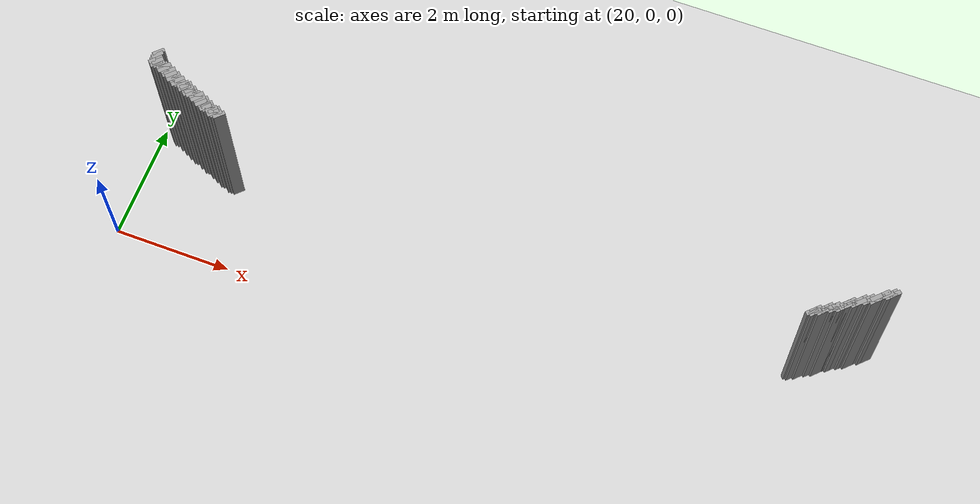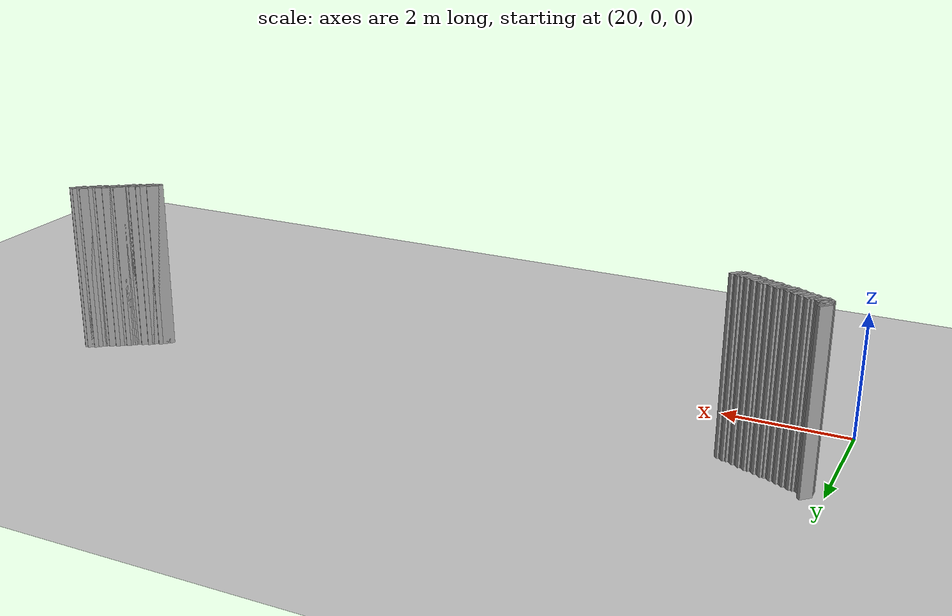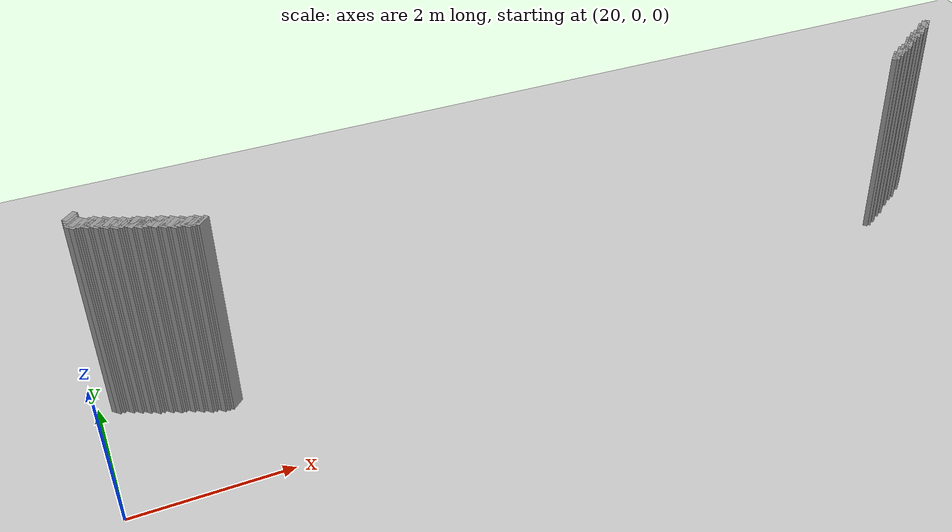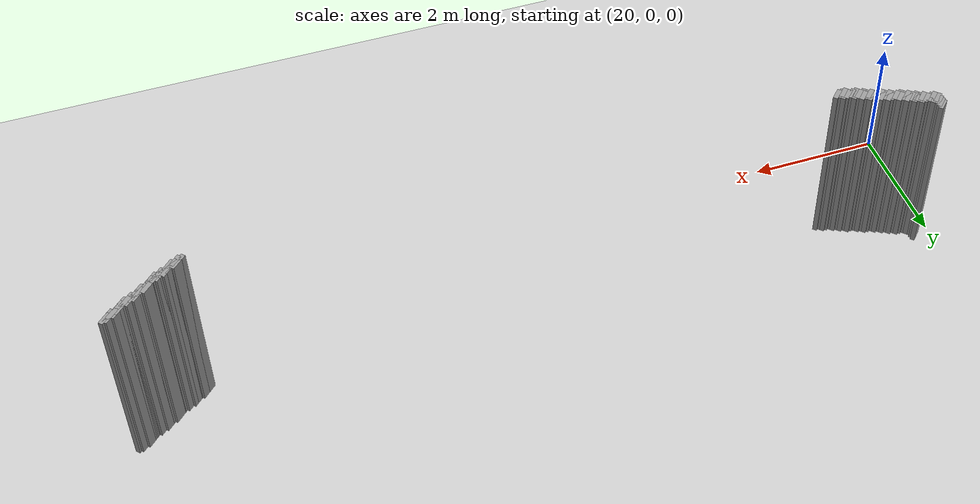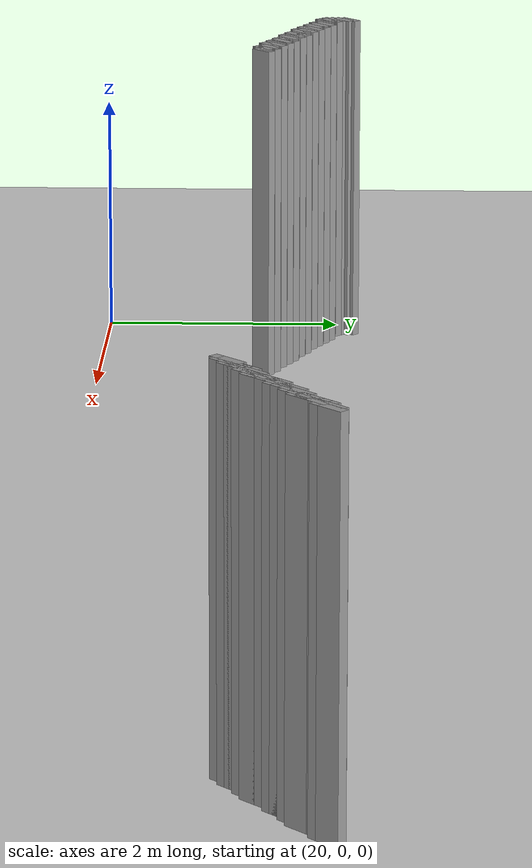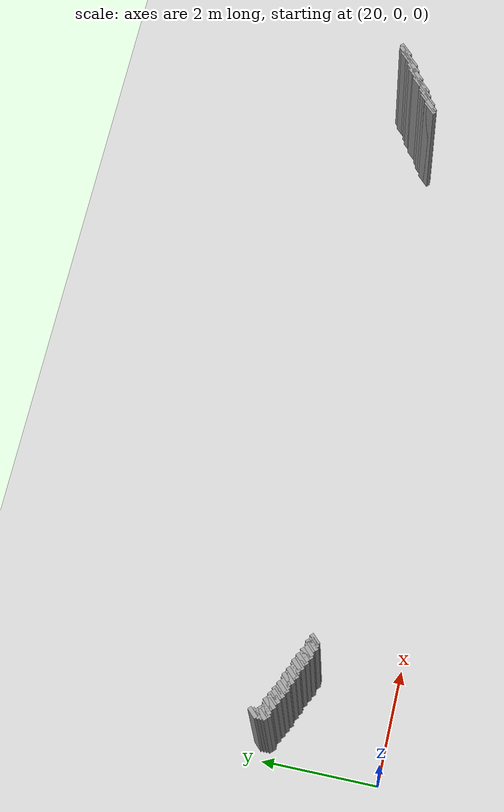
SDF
<sdf version="1.5">
 <world name="default">
  <include><uri>model://ground_plane</uri></include>
  <include><uri>model://sun</uri></include>
  <model name="grey_wall_5042">
   <static>1</static>
   <link name="link">
    <pose>32.35 2.15  1.4 0 0 -0.785398163397</pose>
    <collision name="collision"><geometry><box><size>0.0707106781187 .2  2.8</size></box></geometry></collision>
    <visual name="visual">
     <cast_shadows>0</cast_shadows>
     <geometry><box><size>0.0707106781187 .2  2.8</size></box></geometry>
     <material>
      <script>
       <uri>model://grey_wall/materials/scripts</uri>
       <uri>model://grey_wall/materials/textures</uri>
       <name>vrc/grey_wall</name>
      </script>
     </material>
    </visual>
   </link>
  </model>
  <model name="grey_wall_5043">
   <static>1</static>
   <link name="link">
    <pose>32.4 2.15  1.4 0 0 -0.785398163397</pose>
    <collision name="collision"><geometry><box><size>0.0707106781187 .2  2.8</size></box></geometry></collision>
    <visual name="visual">
     <cast_shadows>0</cast_shadows>
     <geometry><box><size>0.0707106781187 .2  2.8</size></box></geometry>
     <material>
      <script>
       <uri>model://grey_wall/materials/scripts</uri>
       <uri>model://grey_wall/materials/textures</uri>
       <name>vrc/grey_wall</name>
      </script>
     </material>
    </visual>
   </link>
  </model>
  <model name="grey_wall_5044">
   <static>1</static>
   <link name="link">
    <pose>20.25 2.1  1.4 0 0 -0.785398163397</pose>
    <collision name="collision"><geometry><box><size>0.0707106781187 .2  2.8</size></box></geometry></collision>
    <visual name="visual">
     <cast_shadows>0</cast_shadows>
     <geometry><box><size>0.0707106781187 .2  2.8</size></box></geometry>
     <material>
      <script>
       <uri>model://grey_wall/materials/scripts</uri>
       <uri>model://grey_wall/materials/textures</uri>
       <name>vrc/grey_wall</name>
      </script>
     </material>
    </visual>
   </link>
  </model>
  <model name="grey_wall_5045">
   <static>1</static>
   <link name="link">
    <pose>32.25 2.1  1.4 0 0 -0.785398163397</pose>
    <collision name="collision"><geometry><box><size>0.0707106781187 .2  2.8</size></box></geometry></collision>
    <visual name="visual">
     <cast_shadows>0</cast_shadows>
     <geometry><box><size>0.0707106781187 .2  2.8</size></box></geometry>
     <material>
      <script>
       <uri>model://grey_wall/materials/scripts</uri>
       <uri>model://grey_wall/materials/textures</uri>
       <name>vrc/grey_wall</name>
      </script>
     </material>
    </visual>
   </link>
  </model>
  <model name="grey_wall_5046">
   <static>1</static>
   <link name="link">
    <pose>32.3 2.1  1.4 0 0 -0.785398163397</pose>
    <collision name="collision"><geometry><box><size>0.0707106781187 .2  2.8</size></box></geometry></collision>
    <visual name="visual">
     <cast_shadows>0</cast_shadows>
     <geometry><box><size>0.0707106781187 .2  2.8</size></box></geometry>
     <material>
      <script>
       <uri>model://grey_wall/materials/scripts</uri>
       <uri>model://grey_wall/materials/textures</uri>
       <name>vrc/grey_wall</name>
      </script>
     </material>
    </visual>
   </link>
  </model>
  <model name="grey_wall_5047">
   <static>1</static>
   <link name="link">
    <pose>32.35 2.1  1.4 0 0 -0.785398163397</pose>
    <collision name="collision"><geometry><box><size>0.0707106781187 .2  2.8</size></box></geometry></collision>
    <visual name="visual">
     <cast_shadows>0</cast_shadows>
     <geometry><box><size>0.0707106781187 .2  2.8</size></box></geometry>
     <material>
      <script>
       <uri>model://grey_wall/materials/scripts</uri>
       <uri>model://grey_wall/materials/textures</uri>
       <name>vrc/grey_wall</name>
      </script>
     </material>
    </visual>
   </link>
  </model>
  <model name="grey_wall_5048">
   <static>1</static>
   <link name="link">
    <pose>20.25 2.05  1.4 0 0 -0.785398163397</pose>
    <collision name="collision"><geometry><box><size>0.0707106781187 .2  2.8</size></box></geometry></collision>
    <visual name="visual">
     <cast_shadows>0</cast_shadows>
     <geometry><box><size>0.0707106781187 .2  2.8</size></box></geometry>
     <material>
      <script>
       <uri>model://grey_wall/materials/scripts</uri>
       <uri>model://grey_wall/materials/textures</uri>
       <name>vrc/grey_wall</name>
      </script>
     </material>
    </visual>
   </link>
  </model>
  <model name="grey_wall_5049">
   <static>1</static>
   <link name="link">
    <pose>32.2 2.05  1.4 0 0 -0.785398163397</pose>
    <collision name="collision"><geometry><box><size>0.0707106781187 .2  2.8</size></box></geometry></collision>
    <visual name="visual">
     <cast_shadows>0</cast_shadows>
     <geometry><box><size>0.0707106781187 .2  2.8</size></box></geometry>
     <material>
      <script>
       <uri>model://grey_wall/materials/scripts</uri>
       <uri>model://grey_wall/materials/textures</uri>
       <name>vrc/grey_wall</name>
      </script>
     </material>
    </visual>
   </link>
  </model>
  <model name="grey_wall_5050">
   <static>1</static>
   <link name="link">
    <pose>32.25 2.05  1.4 0 0 -0.785398163397</pose>
    <collision name="collision"><geometry><box><size>0.0707106781187 .2  2.8</size></box></geometry></collision>
    <visual name="visual">
     <cast_shadows>0</cast_shadows>
     <geometry><box><size>0.0707106781187 .2  2.8</size></box></geometry>
     <material>
      <script>
       <uri>model://grey_wall/materials/scripts</uri>
       <uri>model://grey_wall/materials/textures</uri>
       <name>vrc/grey_wall</name>
      </script>
     </material>
    </visual>
   </link>
  </model>
  <model name="grey_wall_5051">
   <static>1</static>
   <link name="link">
    <pose>20.25 2.0  1.4 0 0 -0.785398163397</pose>
    <collision name="collision"><geometry><box><size>0.0707106781187 .2  2.8</size></box></geometry></collision>
    <visual name="visual">
     <cast_shadows>0</cast_shadows>
     <geometry><box><size>0.0707106781187 .2  2.8</size></box></geometry>
     <material>
      <script>
       <uri>model://grey_wall/materials/scripts</uri>
       <uri>model://grey_wall/materials/textures</uri>
       <name>vrc/grey_wall</name>
      </script>
     </material>
    </visual>
   </link>
  </model>
  <model name="grey_wall_5052">
   <static>1</static>
   <link name="link">
    <pose>32.15 2.0  1.4 0 0 -0.785398163397</pose>
    <collision name="collision"><geometry><box><size>0.0707106781187 .2  2.8</size></box></geometry></collision>
    <visual name="visual">
     <cast_shadows>0</cast_shadows>
     <geometry><box><size>0.0707106781187 .2  2.8</size></box></geometry>
     <material>
      <script>
       <uri>model://grey_wall/materials/scripts</uri>
       <uri>model://grey_wall/materials/textures</uri>
       <name>vrc/grey_wall</name>
      </script>
     </material>
    </visual>
   </link>
  </model>
  <model name="grey_wall_5053">
   <static>1</static>
   <link name="link">
    <pose>32.2 2.0  1.4 0 0 -0.785398163397</pose>
    <collision name="collision"><geometry><box><size>0.0707106781187 .2  2.8</size></box></geometry></collision>
    <visual name="visual">
     <cast_shadows>0</cast_shadows>
     <geometry><box><size>0.0707106781187 .2  2.8</size></box></geometry>
     <material>
      <script>
       <uri>model://grey_wall/materials/scripts</uri>
       <uri>model://grey_wall/materials/textures</uri>
       <name>vrc/grey_wall</name>
      </script>
     </material>
    </visual>
   </link>
  </model>
  <model name="grey_wall_5054">
   <static>1</static>
   <link name="link">
    <pose>20.25 1.95  1.4 0 0 -0.785398163397</pose>
    <collision name="collision"><geometry><box><size>0.0707106781187 .2  2.8</size></box></geometry></collision>
    <visual name="visual">
     <cast_shadows>0</cast_shadows>
     <geometry><box><size>0.0707106781187 .2  2.8</size></box></geometry>
     <material>
      <script>
       <uri>model://grey_wall/materials/scripts</uri>
       <uri>model://grey_wall/materials/textures</uri>
       <name>vrc/grey_wall</name>
      </script>
     </material>
    </visual>
   </link>
  </model>
  <model name="grey_wall_5055">
   <static>1</static>
   <link name="link">
    <pose>20.3 1.95  1.4 0 0 -0.785398163397</pose>
    <collision name="collision"><geometry><box><size>0.0707106781187 .2  2.8</size></box></geometry></collision>
    <visual name="visual">
     <cast_shadows>0</cast_shadows>
     <geometry><box><size>0.0707106781187 .2  2.8</size></box></geometry>
     <material>
      <script>
       <uri>model://grey_wall/materials/scripts</uri>
       <uri>model://grey_wall/materials/textures</uri>
       <name>vrc/grey_wall</name>
      </script>
     </material>
    </visual>
   </link>
  </model>
  <model name="grey_wall_5056">
   <static>1</static>
   <link name="link">
    <pose>32.05 1.95  1.4 0 0 -0.785398163397</pose>
    <collision name="collision"><geometry><box><size>0.0707106781187 .2  2.8</size></box></geometry></collision>
    <visual name="visual">
     <cast_shadows>0</cast_shadows>
     <geometry><box><size>0.0707106781187 .2  2.8</size></box></geometry>
     <material>
      <script>
       <uri>model://grey_wall/materials/scripts</uri>
       <uri>model://grey_wall/materials/textures</uri>
       <name>vrc/grey_wall</name>
      </script>
     </material>
    </visual>
   </link>
  </model>
  <model name="grey_wall_5057">
   <static>1</static>
   <link name="link">
    <pose>32.1 1.95  1.4 0 0 -0.785398163397</pose>
    <collision name="collision"><geometry><box><size>0.0707106781187 .2  2.8</size></box></geometry></collision>
    <visual name="visual">
     <cast_shadows>0</cast_shadows>
     <geometry><box><size>0.0707106781187 .2  2.8</size></box></geometry>
     <material>
      <script>
       <uri>model://grey_wall/materials/scripts</uri>
       <uri>model://grey_wall/materials/textures</uri>
       <name>vrc/grey_wall</name>
      </script>
     </material>
    </visual>
   </link>
  </model>
  <model name="grey_wall_5058">
   <static>1</static>
   <link name="link">
    <pose>32.15 1.95  1.4 0 0 -0.785398163397</pose>
    <collision name="collision"><geometry><box><size>0.0707106781187 .2  2.8</size></box></geometry></collision>
    <visual name="visual">
     <cast_shadows>0</cast_shadows>
     <geometry><box><size>0.0707106781187 .2  2.8</size></box></geometry>
     <material>
      <script>
       <uri>model://grey_wall/materials/scripts</uri>
       <uri>model://grey_wall/materials/textures</uri>
       <name>vrc/grey_wall</name>
      </script>
     </material>
    </visual>
   </link>
  </model>
  <model name="grey_wall_5059">
   <static>1</static>
   <link name="link">
    <pose>20.3 1.9  1.4 0 0 -0.785398163397</pose>
    <collision name="collision"><geometry><box><size>0.0707106781187 .2  2.8</size></box></geometry></collision>
    <visual name="visual">
     <cast_shadows>0</cast_shadows>
     <geometry><box><size>0.0707106781187 .2  2.8</size></box></geometry>
     <material>
      <script>
       <uri>model://grey_wall/materials/scripts</uri>
       <uri>model://grey_wall/materials/textures</uri>
       <name>vrc/grey_wall</name>
      </script>
     </material>
    </visual>
   </link>
  </model>
  <model name="grey_wall_5060">
   <static>1</static>
   <link name="link">
    <pose>20.35 1.9  1.4 0 0 -0.785398163397</pose>
    <collision name="collision"><geometry><box><size>0.0707106781187 .2  2.8</size></box></geometry></collision>
    <visual name="visual">
     <cast_shadows>0</cast_shadows>
     <geometry><box><size>0.0707106781187 .2  2.8</size></box></geometry>
     <material>
      <script>
       <uri>model://grey_wall/materials/scripts</uri>
       <uri>model://grey_wall/materials/textures</uri>
       <name>vrc/grey_wall</name>
      </script>
     </material>
    </visual>
   </link>
  </model>
  <model name="grey_wall_5061">
   <static>1</static>
   <link name="link">
    <pose>20.4 1.9  1.4 0 0 -0.785398163397</pose>
    <collision name="collision"><geometry><box><size>0.0707106781187 .2  2.8</size></box></geometry></collision>
    <visual name="visual">
     <cast_shadows>0</cast_shadows>
     <geometry><box><size>0.0707106781187 .2  2.8</size></box></geometry>
     <material>
      <script>
       <uri>model://grey_wall/materials/scripts</uri>
       <uri>model://grey_wall/materials/textures</uri>
       <name>vrc/grey_wall</name>
      </script>
     </material>
    </visual>
   </link>
  </model>
  <model name="grey_wall_5062">
   <static>1</static>
   <link name="link">
    <pose>20.45 1.9  1.4 0 0 -0.785398163397</pose>
    <collision name="collision"><geometry><box><size>0.0707106781187 .2  2.8</size></box></geometry></collision>
    <visual name="visual">
     <cast_shadows>0</cast_shadows>
     <geometry><box><size>0.0707106781187 .2  2.8</size></box></geometry>
     <material>
      <script>
       <uri>model://grey_wall/materials/scripts</uri>
       <uri>model://grey_wall/materials/textures</uri>
       <name>vrc/grey_wall</name>
      </script>
     </material>
    </visual>
   </link>
  </model>
  <model name="grey_wall_5063">
   <static>1</static>
   <link name="link">
    <pose>31.95 1.9  1.4 0 0 -0.785398163397</pose>
    <collision name="collision"><geometry><box><size>0.0707106781187 .2  2.8</size></box></geometry></collision>
    <visual name="visual">
     <cast_shadows>0</cast_shadows>
     <geometry><box><size>0.0707106781187 .2  2.8</size></box></geometry>
     <material>
      <script>
       <uri>model://grey_wall/materials/scripts</uri>
       <uri>model://grey_wall/materials/textures</uri>
       <name>vrc/grey_wall</name>
      </script>
     </material>
    </visual>
   </link>
  </model>
  <model name="grey_wall_5064">
   <static>1</static>
   <link name="link">
    <pose>32.0 1.9  1.4 0 0 -0.785398163397</pose>
    <collision name="collision"><geometry><box><size>0.0707106781187 .2  2.8</size></box></geometry></collision>
    <visual name="visual">
     <cast_shadows>0</cast_shadows>
     <geometry><box><size>0.0707106781187 .2  2.8</size></box></geometry>
     <material>
      <script>
       <uri>model://grey_wall/materials/scripts</uri>
       <uri>model://grey_wall/materials/textures</uri>
       <name>vrc/grey_wall</name>
      </script>
     </material>
    </visual>
   </link>
  </model>
  <model name="grey_wall_5065">
   <static>1</static>
   <link name="link">
    <pose>32.05 1.9  1.4 0 0 -0.785398163397</pose>
    <collision name="collision"><geometry><box><size>0.0707106781187 .2  2.8</size></box></geometry></collision>
    <visual name="visual">
     <cast_shadows>0</cast_shadows>
     <geometry><box><size>0.0707106781187 .2  2.8</size></box></geometry>
     <material>
      <script>
       <uri>model://grey_wall/materials/scripts</uri>
       <uri>model://grey_wall/materials/textures</uri>
       <name>vrc/grey_wall</name>
      </script>
     </material>
    </visual>
   </link>
  </model>
  <model name="grey_wall_5066">
   <static>1</static>
   <link name="link">
    <pose>20.45 1.85  1.4 0 0 -0.785398163397</pose>
    <collision name="collision"><geometry><box><size>0.0707106781187 .2  2.8</size></box></geometry></collision>
    <visual name="visual">
     <cast_shadows>0</cast_shadows>
     <geometry><box><size>0.0707106781187 .2  2.8</size></box></geometry>
     <material>
      <script>
       <uri>model://grey_wall/materials/scripts</uri>
       <uri>model://grey_wall/materials/textures</uri>
       <name>vrc/grey_wall</name>
      </script>
     </material>
    </visual>
   </link>
  </model>
  <model name="grey_wall_5067">
   <static>1</static>
   <link name="link">
    <pose>20.5 1.85  1.4 0 0 -0.785398163397</pose>
    <collision name="collision"><geometry><box><size>0.0707106781187 .2  2.8</size></box></geometry></collision>
    <visual name="visual">
     <cast_shadows>0</cast_shadows>
     <geometry><box><size>0.0707106781187 .2  2.8</size></box></geometry>
     <material>
      <script>
       <uri>model://grey_wall/materials/scripts</uri>
       <uri>model://grey_wall/materials/textures</uri>
       <name>vrc/grey_wall</name>
      </script>
     </material>
    </visual>
   </link>
  </model>
  <model name="grey_wall_5068">
   <static>1</static>
   <link name="link">
    <pose>20.55 1.85  1.4 0 0 -0.785398163397</pose>
    <collision name="collision"><geometry><box><size>0.0707106781187 .2  2.8</size></box></geometry></collision>
    <visual name="visual">
     <cast_shadows>0</cast_shadows>
     <geometry><box><size>0.0707106781187 .2  2.8</size></box></geometry>
     <material>
      <script>
       <uri>model://grey_wall/materials/scripts</uri>
       <uri>model://grey_wall/materials/textures</uri>
       <name>vrc/grey_wall</name>
      </script>
     </material>
    </visual>
   </link>
  </model>
  <model name="grey_wall_5069">
   <static>1</static>
   <link name="link">
    <pose>31.9 1.85  1.4 0 0 -0.785398163397</pose>
    <collision name="collision"><geometry><box><size>0.0707106781187 .2  2.8</size></box></geometry></collision>
    <visual name="visual">
     <cast_shadows>0</cast_shadows>
     <geometry><box><size>0.0707106781187 .2  2.8</size></box></geometry>
     <material>
      <script>
       <uri>model://grey_wall/materials/scripts</uri>
       <uri>model://grey_wall/materials/textures</uri>
       <name>vrc/grey_wall</name>
      </script>
     </material>
    </visual>
   </link>
  </model>
  <model name="grey_wall_5070">
   <static>1</static>
   <link name="link">
    <pose>31.95 1.85  1.4 0 0 -0.785398163397</pose>
    <collision name="collision"><geometry><box><size>0.0707106781187 .2  2.8</size></box></geometry></collision>
    <visual name="visual">
     <cast_shadows>0</cast_shadows>
     <geometry><box><size>0.0707106781187 .2  2.8</size></box></geometry>
     <material>
      <script>
       <uri>model://grey_wall/materials/scripts</uri>
       <uri>model://grey_wall/materials/textures</uri>
       <name>vrc/grey_wall</name>
      </script>
     </material>
    </visual>
   </link>
  </model>
  <model name="grey_wall_5071">
   <static>1</static>
   <link name="link">
    <pose>20.55 1.8  1.4 0 0 -0.785398163397</pose>
    <collision name="collision"><geometry><box><size>0.0707106781187 .2  2.8</size></box></geometry></collision>
    <visual name="visual">
     <cast_shadows>0</cast_shadows>
     <geometry><box><size>0.0707106781187 .2  2.8</size></box></geometry>
     <material>
      <script>
       <uri>model://grey_wall/materials/scripts</uri>
       <uri>model://grey_wall/materials/textures</uri>
       <name>vrc/grey_wall</name>
      </script>
     </material>
    </visual>
   </link>
  </model>
  <model name="grey_wall_5072">
   <static>1</static>
   <link name="link">
    <pose>20.6 1.8  1.4 0 0 -0.785398163397</pose>
    <collision name="collision"><geometry><box><size>0.0707106781187 .2  2.8</size></box></geometry></collision>
    <visual name="visual">
     <cast_shadows>0</cast_shadows>
     <geometry><box><size>0.0707106781187 .2  2.8</size></box></geometry>
     <material>
      <script>
       <uri>model://grey_wall/materials/scripts</uri>
       <uri>model://grey_wall/materials/textures</uri>
       <name>vrc/grey_wall</name>
      </script>
     </material>
    </visual>
   </link>
  </model>
  <model name="grey_wall_5073">
   <static>1</static>
   <link name="link">
    <pose>20.65 1.8  1.4 0 0 -0.785398163397</pose>
    <collision name="collision"><geometry><box><size>0.0707106781187 .2  2.8</size></box></geometry></collision>
    <visual name="visual">
     <cast_shadows>0</cast_shadows>
     <geometry><box><size>0.0707106781187 .2  2.8</size></box></geometry>
     <material>
      <script>
       <uri>model://grey_wall/materials/scripts</uri>
       <uri>model://grey_wall/materials/textures</uri>
       <name>vrc/grey_wall</name>
      </script>
     </material>
    </visual>
   </link>
  </model>
  <model name="grey_wall_5074">
   <static>1</static>
   <link name="link">
    <pose>31.8 1.8  1.4 0 0 -0.785398163397</pose>
    <collision name="collision"><geometry><box><size>0.0707106781187 .2  2.8</size></box></geometry></collision>
    <visual name="visual">
     <cast_shadows>0</cast_shadows>
     <geometry><box><size>0.0707106781187 .2  2.8</size></box></geometry>
     <material>
      <script>
       <uri>model://grey_wall/materials/scripts</uri>
       <uri>model://grey_wall/materials/textures</uri>
       <name>vrc/grey_wall</name>
      </script>
     </material>
    </visual>
   </link>
  </model>
  <model name="grey_wall_5075">
   <static>1</static>
   <link name="link">
    <pose>31.85 1.8  1.4 0 0 -0.785398163397</pose>
    <collision name="collision"><geometry><box><size>0.0707106781187 .2  2.8</size></box></geometry></collision>
    <visual name="visual">
     <cast_shadows>0</cast_shadows>
     <geometry><box><size>0.0707106781187 .2  2.8</size></box></geometry>
     <material>
      <script>
       <uri>model://grey_wall/materials/scripts</uri>
       <uri>model://grey_wall/materials/textures</uri>
       <name>vrc/grey_wall</name>
      </script>
     </material>
    </visual>
   </link>
  </model>
  <model name="grey_wall_5076">
   <static>1</static>
   <link name="link">
    <pose>31.9 1.8  1.4 0 0 -0.785398163397</pose>
    <collision name="collision"><geometry><box><size>0.0707106781187 .2  2.8</size></box></geometry></collision>
    <visual name="visual">
     <cast_shadows>0</cast_shadows>
     <geometry><box><size>0.0707106781187 .2  2.8</size></box></geometry>
     <material>
      <script>
       <uri>model://grey_wall/materials/scripts</uri>
       <uri>model://grey_wall/materials/textures</uri>
       <name>vrc/grey_wall</name>
      </script>
     </material>
    </visual>
   </link>
  </model>
  <model name="grey_wall_5077">
   <static>1</static>
   <link name="link">
    <pose>20.65 1.75  1.4 0 0 -0.785398163397</pose>
    <collision name="collision"><geometry><box><size>0.0707106781187 .2  2.8</size></box></geometry></collision>
    <visual name="visual">
     <cast_shadows>0</cast_shadows>
     <geometry><box><size>0.0707106781187 .2  2.8</size></box></geometry>
     <material>
      <script>
       <uri>model://grey_wall/materials/scripts</uri>
       <uri>model://grey_wall/materials/textures</uri>
       <name>vrc/grey_wall</name>
      </script>
     </material>
    </visual>
   </link>
  </model>
  <model name="grey_wall_5078">
   <static>1</static>
   <link name="link">
    <pose>20.7 1.75  1.4 0 0 -0.785398163397</pose>
    <collision name="collision"><geometry><box><size>0.0707106781187 .2  2.8</size></box></geometry></collision>
    <visual name="visual">
     <cast_shadows>0</cast_shadows>
     <geometry><box><size>0.0707106781187 .2  2.8</size></box></geometry>
     <material>
      <script>
       <uri>model://grey_wall/materials/scripts</uri>
       <uri>model://grey_wall/materials/textures</uri>
       <name>vrc/grey_wall</name>
      </script>
     </material>
    </visual>
   </link>
  </model>
  <model name="grey_wall_5079">
   <static>1</static>
   <link name="link">
    <pose>20.75 1.75  1.4 0 0 -0.785398163397</pose>
    <collision name="collision"><geometry><box><size>0.0707106781187 .2  2.8</size></box></geometry></collision>
    <visual name="visual">
     <cast_shadows>0</cast_shadows>
     <geometry><box><size>0.0707106781187 .2  2.8</size></box></geometry>
     <material>
      <script>
       <uri>model://grey_wall/materials/scripts</uri>
       <uri>model://grey_wall/materials/textures</uri>
       <name>vrc/grey_wall</name>
      </script>
     </material>
    </visual>
   </link>
  </model>
  <model name="grey_wall_5080">
   <static>1</static>
   <link name="link">
    <pose>31.75 1.75  1.4 0 0 -0.785398163397</pose>
    <collision name="collision"><geometry><box><size>0.0707106781187 .2  2.8</size></box></geometry></collision>
    <visual name="visual">
     <cast_shadows>0</cast_shadows>
     <geometry><box><size>0.0707106781187 .2  2.8</size></box></geometry>
     <material>
      <script>
       <uri>model://grey_wall/materials/scripts</uri>
       <uri>model://grey_wall/materials/textures</uri>
       <name>vrc/grey_wall</name>
      </script>
     </material>
    </visual>
   </link>
  </model>
  <model name="grey_wall_5081">
   <static>1</static>
   <link name="link">
    <pose>31.8 1.75  1.4 0 0 -0.785398163397</pose>
    <collision name="collision"><geometry><box><size>0.0707106781187 .2  2.8</size></box></geometry></collision>
    <visual name="visual">
     <cast_shadows>0</cast_shadows>
     <geometry><box><size>0.0707106781187 .2  2.8</size></box></geometry>
     <material>
      <script>
       <uri>model://grey_wall/materials/scripts</uri>
       <uri>model://grey_wall/materials/textures</uri>
       <name>vrc/grey_wall</name>
      </script>
     </material>
    </visual>
   </link>
  </model>
  <model name="grey_wall_5082">
   <static>1</static>
   <link name="link">
    <pose>20.75 1.7  1.4 0 0 -0.785398163397</pose>
    <collision name="collision"><geometry><box><size>0.0707106781187 .2  2.8</size></box></geometry></collision>
    <visual name="visual">
     <cast_shadows>0</cast_shadows>
     <geometry><box><size>0.0707106781187 .2  2.8</size></box></geometry>
     <material>
      <script>
       <uri>model://grey_wall/materials/scripts</uri>
       <uri>model://grey_wall/materials/textures</uri>
       <name>vrc/grey_wall</name>
      </script>
     </material>
    </visual>
   </link>
  </model>
  <model name="grey_wall_5083">
   <static>1</static>
   <link name="link">
    <pose>20.8 1.7  1.4 0 0 -0.785398163397</pose>
    <collision name="collision"><geometry><box><size>0.0707106781187 .2  2.8</size></box></geometry></collision>
    <visual name="visual">
     <cast_shadows>0</cast_shadows>
     <geometry><box><size>0.0707106781187 .2  2.8</size></box></geometry>
     <material>
      <script>
       <uri>model://grey_wall/materials/scripts</uri>
       <uri>model://grey_wall/materials/textures</uri>
       <name>vrc/grey_wall</name>
      </script>
     </material>
    </visual>
   </link>
  </model>
  <model name="grey_wall_5084">
   <static>1</static>
   <link name="link">
    <pose>20.85 1.7  1.4 0 0 -0.785398163397</pose>
    <collision name="collision"><geometry><box><size>0.0707106781187 .2  2.8</size></box></geometry></collision>
    <visual name="visual">
     <cast_shadows>0</cast_shadows>
     <geometry><box><size>0.0707106781187 .2  2.8</size></box></geometry>
     <material>
      <script>
       <uri>model://grey_wall/materials/scripts</uri>
       <uri>model://grey_wall/materials/textures</uri>
       <name>vrc/grey_wall</name>
      </script>
     </material>
    </visual>
   </link>
  </model>
  <model name="grey_wall_5085">
   <static>1</static>
   <link name="link">
    <pose>20.9 1.7  1.4 0 0 -0.785398163397</pose>
    <collision name="collision"><geometry><box><size>0.0707106781187 .2  2.8</size></box></geometry></collision>
    <visual name="visual">
     <cast_shadows>0</cast_shadows>
     <geometry><box><size>0.0707106781187 .2  2.8</size></box></geometry>
     <material>
      <script>
       <uri>model://grey_wall/materials/scripts</uri>
       <uri>model://grey_wall/materials/textures</uri>
       <name>vrc/grey_wall</name>
      </script>
     </material>
    </visual>
   </link>
  </model>
  <model name="grey_wall_5086">
   <static>1</static>
   <link name="link">
    <pose>31.7 1.7  1.4 0 0 -0.785398163397</pose>
    <collision name="collision"><geometry><box><size>0.0707106781187 .2  2.8</size></box></geometry></collision>
    <visual name="visual">
     <cast_shadows>0</cast_shadows>
     <geometry><box><size>0.0707106781187 .2  2.8</size></box></geometry>
     <material>
      <script>
       <uri>model://grey_wall/materials/scripts</uri>
       <uri>model://grey_wall/materials/textures</uri>
       <name>vrc/grey_wall</name>
      </script>
     </material>
    </visual>
   </link>
  </model>
  <model name="grey_wall_5087">
   <static>1</static>
   <link name="link">
    <pose>31.75 1.7  1.4 0 0 -0.785398163397</pose>
    <collision name="collision"><geometry><box><size>0.0707106781187 .2  2.8</size></box></geometry></collision>
    <visual name="visual">
     <cast_shadows>0</cast_shadows>
     <geometry><box><size>0.0707106781187 .2  2.8</size></box></geometry>
     <material>
      <script>
       <uri>model://grey_wall/materials/scripts</uri>
       <uri>model://grey_wall/materials/textures</uri>
       <name>vrc/grey_wall</name>
      </script>
     </material>
    </visual>
   </link>
  </model>
  <model name="grey_wall_5088">
   <static>1</static>
   <link name="link">
    <pose>20.9 1.65  1.4 0 0 -0.785398163397</pose>
    <collision name="collision"><geometry><box><size>0.0707106781187 .2  2.8</size></box></geometry></collision>
    <visual name="visual">
     <cast_shadows>0</cast_shadows>
     <geometry><box><size>0.0707106781187 .2  2.8</size></box></geometry>
     <material>
      <script>
       <uri>model://grey_wall/materials/scripts</uri>
       <uri>model://grey_wall/materials/textures</uri>
       <name>vrc/grey_wall</name>
      </script>
     </material>
    </visual>
   </link>
  </model>
  <model name="grey_wall_5089">
   <static>1</static>
   <link name="link">
    <pose>20.95 1.65  1.4 0 0 -0.785398163397</pose>
    <collision name="collision"><geometry><box><size>0.0707106781187 .2  2.8</size></box></geometry></collision>
    <visual name="visual">
     <cast_shadows>0</cast_shadows>
     <geometry><box><size>0.0707106781187 .2  2.8</size></box></geometry>
     <material>
      <script>
       <uri>model://grey_wall/materials/scripts</uri>
       <uri>model://grey_wall/materials/textures</uri>
       <name>vrc/grey_wall</name>
      </script>
     </material>
    </visual>
   </link>
  </model>
  <model name="grey_wall_5090">
   <static>1</static>
   <link name="link">
    <pose>21.0 1.65  1.4 0 0 -0.785398163397</pose>
    <collision name="collision"><geometry><box><size>0.0707106781187 .2  2.8</size></box></geometry></collision>
    <visual name="visual">
     <cast_shadows>0</cast_shadows>
     <geometry><box><size>0.0707106781187 .2  2.8</size></box></geometry>
     <material>
      <script>
       <uri>model://grey_wall/materials/scripts</uri>
       <uri>model://grey_wall/materials/textures</uri>
       <name>vrc/grey_wall</name>
      </script>
     </material>
    </visual>
   </link>
  </model>
  <model name="grey_wall_5091">
   <static>1</static>
   <link name="link">
    <pose>31.6 1.65  1.4 0 0 -0.785398163397</pose>
    <collision name="collision"><geometry><box><size>0.0707106781187 .2  2.8</size></box></geometry></collision>
    <visual name="visual">
     <cast_shadows>0</cast_shadows>
     <geometry><box><size>0.0707106781187 .2  2.8</size></box></geometry>
     <material>
      <script>
       <uri>model://grey_wall/materials/scripts</uri>
       <uri>model://grey_wall/materials/textures</uri>
       <name>vrc/grey_wall</name>
      </script>
     </material>
    </visual>
   </link>
  </model>
  <model name="grey_wall_5092">
   <static>1</static>
   <link name="link">
    <pose>31.65 1.65  1.4 0 0 -0.785398163397</pose>
    <collision name="collision"><geometry><box><size>0.0707106781187 .2  2.8</size></box></geometry></collision>
    <visual name="visual">
     <cast_shadows>0</cast_shadows>
     <geometry><box><size>0.0707106781187 .2  2.8</size></box></geometry>
     <material>
      <script>
       <uri>model://grey_wall/materials/scripts</uri>
       <uri>model://grey_wall/materials/textures</uri>
       <name>vrc/grey_wall</name>
      </script>
     </material>
    </visual>
   </link>
  </model>
  <model name="grey_wall_5093">
   <static>1</static>
   <link name="link">
    <pose>31.7 1.65  1.4 0 0 -0.785398163397</pose>
    <collision name="collision"><geometry><box><size>0.0707106781187 .2  2.8</size></box></geometry></collision>
    <visual name="visual">
     <cast_shadows>0</cast_shadows>
     <geometry><box><size>0.0707106781187 .2  2.8</size></box></geometry>
     <material>
      <script>
       <uri>model://grey_wall/materials/scripts</uri>
       <uri>model://grey_wall/materials/textures</uri>
       <name>vrc/grey_wall</name>
      </script>
     </material>
    </visual>
   </link>
  </model>
  <model name="grey_wall_5094">
   <static>1</static>
   <link name="link">
    <pose>21.0 1.6  1.4 0 0 -0.785398163397</pose>
    <collision name="collision"><geometry><box><size>0.0707106781187 .2  2.8</size></box></geometry></collision>
    <visual name="visual">
     <cast_shadows>0</cast_shadows>
     <geometry><box><size>0.0707106781187 .2  2.8</size></box></geometry>
     <material>
      <script>
       <uri>model://grey_wall/materials/scripts</uri>
       <uri>model://grey_wall/materials/textures</uri>
       <name>vrc/grey_wall</name>
      </script>
     </material>
    </visual>
   </link>
  </model>
  <model name="grey_wall_5095">
   <static>1</static>
   <link name="link">
    <pose>21.05 1.6  1.4 0 0 -0.785398163397</pose>
    <collision name="collision"><geometry><box><size>0.0707106781187 .2  2.8</size></box></geometry></collision>
    <visual name="visual">
     <cast_shadows>0</cast_shadows>
     <geometry><box><size>0.0707106781187 .2  2.8</size></box></geometry>
     <material>
      <script>
       <uri>model://grey_wall/materials/scripts</uri>
       <uri>model://grey_wall/materials/textures</uri>
       <name>vrc/grey_wall</name>
      </script>
     </material>
    </visual>
   </link>
  </model>
  <model name="grey_wall_5096">
   <static>1</static>
   <link name="link">
    <pose>21.1 1.6  1.4 0 0 -0.785398163397</pose>
    <collision name="collision"><geometry><box><size>0.0707106781187 .2  2.8</size></box></geometry></collision>
    <visual name="visual">
     <cast_shadows>0</cast_shadows>
     <geometry><box><size>0.0707106781187 .2  2.8</size></box></geometry>
     <material>
      <script>
       <uri>model://grey_wall/materials/scripts</uri>
       <uri>model://grey_wall/materials/textures</uri>
       <name>vrc/grey_wall</name>
      </script>
     </material>
    </visual>
   </link>
  </model>
  <model name="grey_wall_5097">
   <static>1</static>
   <link name="link">
    <pose>21.15 1.6  1.4 0 0 -0.785398163397</pose>
    <collision name="collision"><geometry><box><size>0.0707106781187 .2  2.8</size></box></geometry></collision>
    <visual name="visual">
     <cast_shadows>0</cast_shadows>
     <geometry><box><size>0.0707106781187 .2  2.8</size></box></geometry>
     <material>
      <script>
       <uri>model://grey_wall/materials/scripts</uri>
       <uri>model://grey_wall/materials/textures</uri>
       <name>vrc/grey_wall</name>
      </script>
     </material>
    </visual>
   </link>
  </model>
  <model name="grey_wall_5098">
   <static>1</static>
   <link name="link">
    <pose>31.5 1.6  1.4 0 0 -0.785398163397</pose>
    <collision name="collision"><geometry><box><size>0.0707106781187 .2  2.8</size></box></geometry></collision>
    <visual name="visual">
     <cast_shadows>0</cast_shadows>
     <geometry><box><size>0.0707106781187 .2  2.8</size></box></geometry>
     <material>
      <script>
       <uri>model://grey_wall/materials/scripts</uri>
       <uri>model://grey_wall/materials/textures</uri>
       <name>vrc/grey_wall</name>
      </script>
     </material>
    </visual>
   </link>
  </model>
  <model name="grey_wall_5099">
   <static>1</static>
   <link name="link">
    <pose>31.55 1.6  1.4 0 0 -0.785398163397</pose>
    <collision name="collision"><geometry><box><size>0.0707106781187 .2  2.8</size></box></geometry></collision>
    <visual name="visual">
     <cast_shadows>0</cast_shadows>
     <geometry><box><size>0.0707106781187 .2  2.8</size></box></geometry>
     <material>
      <script>
       <uri>model://grey_wall/materials/scripts</uri>
       <uri>model://grey_wall/materials/textures</uri>
       <name>vrc/grey_wall</name>
      </script>
     </material>
    </visual>
   </link>
  </model>
  <model name="grey_wall_5100">
   <static>1</static>
   <link name="link">
    <pose>31.6 1.6  1.4 0 0 -0.785398163397</pose>
    <collision name="collision"><geometry><box><size>0.0707106781187 .2  2.8</size></box></geometry></collision>
    <visual name="visual">
     <cast_shadows>0</cast_shadows>
     <geometry><box><size>0.0707106781187 .2  2.8</size></box></geometry>
     <material>
      <script>
       <uri>model://grey_wall/materials/scripts</uri>
       <uri>model://grey_wall/materials/textures</uri>
       <name>vrc/grey_wall</name>
      </script>
     </material>
    </visual>
   </link>
  </model>
  <model name="grey_wall_5101">
   <static>1</static>
   <link name="link">
    <pose>21.15 1.55  1.4 0 0 -0.785398163397</pose>
    <collision name="collision"><geometry><box><size>0.0707106781187 .2  2.8</size></box></geometry></collision>
    <visual name="visual">
     <cast_shadows>0</cast_shadows>
     <geometry><box><size>0.0707106781187 .2  2.8</size></box></geometry>
     <material>
      <script>
       <uri>model://grey_wall/materials/scripts</uri>
       <uri>model://grey_wall/materials/textures</uri>
       <name>vrc/grey_wall</name>
      </script>
     </material>
    </visual>
   </link>
  </model>
  <model name="grey_wall_5102">
   <static>1</static>
   <link name="link">
    <pose>21.2 1.55  1.4 0 0 -0.785398163397</pose>
    <collision name="collision"><geometry><box><size>0.0707106781187 .2  2.8</size></box></geometry></collision>
    <visual name="visual">
     <cast_shadows>0</cast_shadows>
     <geometry><box><size>0.0707106781187 .2  2.8</size></box></geometry>
     <material>
      <script>
       <uri>model://grey_wall/materials/scripts</uri>
       <uri>model://grey_wall/materials/textures</uri>
       <name>vrc/grey_wall</name>
      </script>
     </material>
    </visual>
   </link>
  </model>
  <model name="grey_wall_5103">
   <static>1</static>
   <link name="link">
    <pose>21.25 1.55  1.4 0 0 -0.785398163397</pose>
    <collision name="collision"><geometry><box><size>0.0707106781187 .2  2.8</size></box></geometry></collision>
    <visual name="visual">
     <cast_shadows>0</cast_shadows>
     <geometry><box><size>0.0707106781187 .2  2.8</size></box></geometry>
     <material>
      <script>
       <uri>model://grey_wall/materials/scripts</uri>
       <uri>model://grey_wall/materials/textures</uri>
       <name>vrc/grey_wall</name>
      </script>
     </material>
    </visual>
   </link>
  </model>
  <model name="grey_wall_5104">
   <static>1</static>
   <link name="link">
    <pose>31.45 1.55  1.4 0 0 -0.785398163397</pose>
    <collision name="collision"><geometry><box><size>0.0707106781187 .2  2.8</size></box></geometry></collision>
    <visual name="visual">
     <cast_shadows>0</cast_shadows>
     <geometry><box><size>0.0707106781187 .2  2.8</size></box></geometry>
     <material>
      <script>
       <uri>model://grey_wall/materials/scripts</uri>
       <uri>model://grey_wall/materials/textures</uri>
       <name>vrc/grey_wall</name>
      </script>
     </material>
    </visual>
   </link>
  </model>
  <model name="grey_wall_5105">
   <static>1</static>
   <link name="link">
    <pose>31.5 1.55  1.4 0 0 -0.785398163397</pose>
    <collision name="collision"><geometry><box><size>0.0707106781187 .2  2.8</size></box></geometry></collision>
    <visual name="visual">
     <cast_shadows>0</cast_shadows>
     <geometry><box><size>0.0707106781187 .2  2.8</size></box></geometry>
     <material>
      <script>
       <uri>model://grey_wall/materials/scripts</uri>
       <uri>model://grey_wall/materials/textures</uri>
       <name>vrc/grey_wall</name>
      </script>
     </material>
    </visual>
   </link>
  </model>
  <model name="grey_wall_5106">
   <static>1</static>
   <link name="link">
    <pose>21.25 1.5  1.4 0 0 -0.785398163397</pose>
    <collision name="collision"><geometry><box><size>0.0707106781187 .2  2.8</size></box></geometry></collision>
    <visual name="visual">
     <cast_shadows>0</cast_shadows>
     <geometry><box><size>0.0707106781187 .2  2.8</size></box></geometry>
     <material>
      <script>
       <uri>model://grey_wall/materials/scripts</uri>
       <uri>model://grey_wall/materials/textures</uri>
       <name>vrc/grey_wall</name>
      </script>
     </material>
    </visual>
   </link>
  </model>
  <model name="grey_wall_5107">
   <static>1</static>
   <link name="link">
    <pose>21.3 1.5  1.4 0 0 -0.785398163397</pose>
    <collision name="collision"><geometry><box><size>0.0707106781187 .2  2.8</size></box></geometry></collision>
    <visual name="visual">
     <cast_shadows>0</cast_shadows>
     <geometry><box><size>0.0707106781187 .2  2.8</size></box></geometry>
     <material>
      <script>
       <uri>model://grey_wall/materials/scripts</uri>
       <uri>model://grey_wall/materials/textures</uri>
       <name>vrc/grey_wall</name>
      </script>
     </material>
    </visual>
   </link>
  </model>
  <model name="grey_wall_5108">
   <static>1</static>
   <link name="link">
    <pose>21.35 1.5  1.4 0 0 -0.785398163397</pose>
    <collision name="collision"><geometry><box><size>0.0707106781187 .2  2.8</size></box></geometry></collision>
    <visual name="visual">
     <cast_shadows>0</cast_shadows>
     <geometry><box><size>0.0707106781187 .2  2.8</size></box></geometry>
     <material>
      <script>
       <uri>model://grey_wall/materials/scripts</uri>
       <uri>model://grey_wall/materials/textures</uri>
       <name>vrc/grey_wall</name>
      </script>
     </material>
    </visual>
   </link>
  </model>
  <model name="grey_wall_5109">
   <static>1</static>
   <link name="link">
    <pose>31.35 1.5  1.4 0 0 -0.785398163397</pose>
    <collision name="collision"><geometry><box><size>0.0707106781187 .2  2.8</size></box></geometry></collision>
    <visual name="visual">
     <cast_shadows>0</cast_shadows>
     <geometry><box><size>0.0707106781187 .2  2.8</size></box></geometry>
     <material>
      <script>
       <uri>model://grey_wall/materials/scripts</uri>
       <uri>model://grey_wall/materials/textures</uri>
       <name>vrc/grey_wall</name>
      </script>
     </material>
    </visual>
   </link>
  </model>
  <model name="grey_wall_5110">
   <static>1</static>
   <link name="link">
    <pose>31.4 1.5  1.4 0 0 -0.785398163397</pose>
    <collision name="collision"><geometry><box><size>0.0707106781187 .2  2.8</size></box></geometry></collision>
    <visual name="visual">
     <cast_shadows>0</cast_shadows>
     <geometry><box><size>0.0707106781187 .2  2.8</size></box></geometry>
     <material>
      <script>
       <uri>model://grey_wall/materials/scripts</uri>
       <uri>model://grey_wall/materials/textures</uri>
       <name>vrc/grey_wall</name>
      </script>
     </material>
    </visual>
   </link>
  </model>
  <model name="grey_wall_5111">
   <static>1</static>
   <link name="link">
    <pose>31.45 1.5  1.4 0 0 -0.785398163397</pose>
    <collision name="collision"><geometry><box><size>0.0707106781187 .2  2.8</size></box></geometry></collision>
    <visual name="visual">
     <cast_shadows>0</cast_shadows>
     <geometry><box><size>0.0707106781187 .2  2.8</size></box></geometry>
     <material>
      <script>
       <uri>model://grey_wall/materials/scripts</uri>
       <uri>model://grey_wall/materials/textures</uri>
       <name>vrc/grey_wall</name>
      </script>
     </material>
    </visual>
   </link>
  </model>
  <model name="grey_wall_5112">
   <static>1</static>
   <link name="link">
    <pose>21.35 1.45  1.4 0 0 -0.785398163397</pose>
    <collision name="collision"><geometry><box><size>0.0707106781187 .2  2.8</size></box></geometry></collision>
    <visual name="visual">
     <cast_shadows>0</cast_shadows>
     <geometry><box><size>0.0707106781187 .2  2.8</size></box></geometry>
     <material>
      <script>
       <uri>model://grey_wall/materials/scripts</uri>
       <uri>model://grey_wall/materials/textures</uri>
       <name>vrc/grey_wall</name>
      </script>
     </material>
    </visual>
   </link>
  </model>
  <model name="grey_wall_5113">
   <static>1</static>
   <link name="link">
    <pose>21.4 1.45  1.4 0 0 -0.785398163397</pose>
    <collision name="collision"><geometry><box><size>0.0707106781187 .2  2.8</size></box></geometry></collision>
    <visual name="visual">
     <cast_shadows>0</cast_shadows>
     <geometry><box><size>0.0707106781187 .2  2.8</size></box></geometry>
     <material>
      <script>
       <uri>model://grey_wall/materials/scripts</uri>
       <uri>model://grey_wall/materials/textures</uri>
       <name>vrc/grey_wall</name>
      </script>
     </material>
    </visual>
   </link>
  </model>
  <model name="grey_wall_5114">
   <static>1</static>
   <link name="link">
    <pose>21.45 1.45  1.4 0 0 -0.785398163397</pose>
    <collision name="collision"><geometry><box><size>0.0707106781187 .2  2.8</size></box></geometry></collision>
    <visual name="visual">
     <cast_shadows>0</cast_shadows>
     <geometry><box><size>0.0707106781187 .2  2.8</size></box></geometry>
     <material>
      <script>
       <uri>model://grey_wall/materials/scripts</uri>
       <uri>model://grey_wall/materials/textures</uri>
       <name>vrc/grey_wall</name>
      </script>
     </material>
    </visual>
   </link>
  </model>
  <model name="grey_wall_5115">
   <static>1</static>
   <link name="link">
    <pose>21.5 1.45  1.4 0 0 -0.785398163397</pose>
    <collision name="collision"><geometry><box><size>0.0707106781187 .2  2.8</size></box></geometry></collision>
    <visual name="visual">
     <cast_shadows>0</cast_shadows>
     <geometry><box><size>0.0707106781187 .2  2.8</size></box></geometry>
     <material>
      <script>
       <uri>model://grey_wall/materials/scripts</uri>
       <uri>model://grey_wall/materials/textures</uri>
       <name>vrc/grey_wall</name>
      </script>
     </material>
    </visual>
   </link>
  </model>
  <model name="grey_wall_5116">
   <static>1</static>
   <link name="link">
    <pose>31.3 1.45  1.4 0 0 -0.785398163397</pose>
    <collision name="collision"><geometry><box><size>0.0707106781187 .2  2.8</size></box></geometry></collision>
    <visual name="visual">
     <cast_shadows>0</cast_shadows>
     <geometry><box><size>0.0707106781187 .2  2.8</size></box></geometry>
     <material>
      <script>
       <uri>model://grey_wall/materials/scripts</uri>
       <uri>model://grey_wall/materials/textures</uri>
       <name>vrc/grey_wall</name>
      </script>
     </material>
    </visual>
   </link>
  </model>
  <model name="grey_wall_5117">
   <static>1</static>
   <link name="link">
    <pose>31.35 1.45  1.4 0 0 -0.785398163397</pose>
    <collision name="collision"><geometry><box><size>0.0707106781187 .2  2.8</size></box></geometry></collision>
    <visual name="visual">
     <cast_shadows>0</cast_shadows>
     <geometry><box><size>0.0707106781187 .2  2.8</size></box></geometry>
     <material>
      <script>
       <uri>model://grey_wall/materials/scripts</uri>
       <uri>model://grey_wall/materials/textures</uri>
       <name>vrc/grey_wall</name>
      </script>
     </material>
    </visual>
   </link>
  </model>
  <model name="grey_wall_5118">
   <static>1</static>
   <link name="link">
    <pose>21.5 1.4  1.4 0 0 -0.785398163397</pose>
    <collision name="collision"><geometry><box><size>0.0707106781187 .2  2.8</size></box></geometry></collision>
    <visual name="visual">
     <cast_shadows>0</cast_shadows>
     <geometry><box><size>0.0707106781187 .2  2.8</size></box></geometry>
     <material>
      <script>
       <uri>model://grey_wall/materials/scripts</uri>
       <uri>model://grey_wall/materials/textures</uri>
       <name>vrc/grey_wall</name>
      </script>
     </material>
    </visual>
   </link>
  </model>
  <model name="grey_wall_5119">
   <static>1</static>
   <link name="link">
    <pose>21.55 1.4  1.4 0 0 -0.785398163397</pose>
    <collision name="collision"><geometry><box><size>0.0707106781187 .2  2.8</size></box></geometry></collision>
    <visual name="visual">
     <cast_shadows>0</cast_shadows>
     <geometry><box><size>0.0707106781187 .2  2.8</size></box></geometry>
     <material>
      <script>
       <uri>model://grey_wall/materials/scripts</uri>
       <uri>model://grey_wall/materials/textures</uri>
       <name>vrc/grey_wall</name>
      </script>
     </material>
    </visual>
   </link>
  </model>
  <model name="grey_wall_5120">
   <static>1</static>
   <link name="link">
    <pose>21.6 1.4  1.4 0 0 -0.785398163397</pose>
    <collision name="collision"><geometry><box><size>0.0707106781187 .2  2.8</size></box></geometry></collision>
    <visual name="visual">
     <cast_shadows>0</cast_shadows>
     <geometry><box><size>0.0707106781187 .2  2.8</size></box></geometry>
     <material>
      <script>
       <uri>model://grey_wall/materials/scripts</uri>
       <uri>model://grey_wall/materials/textures</uri>
       <name>vrc/grey_wall</name>
      </script>
     </material>
    </visual>
   </link>
  </model>
 </world>
</sdf>
